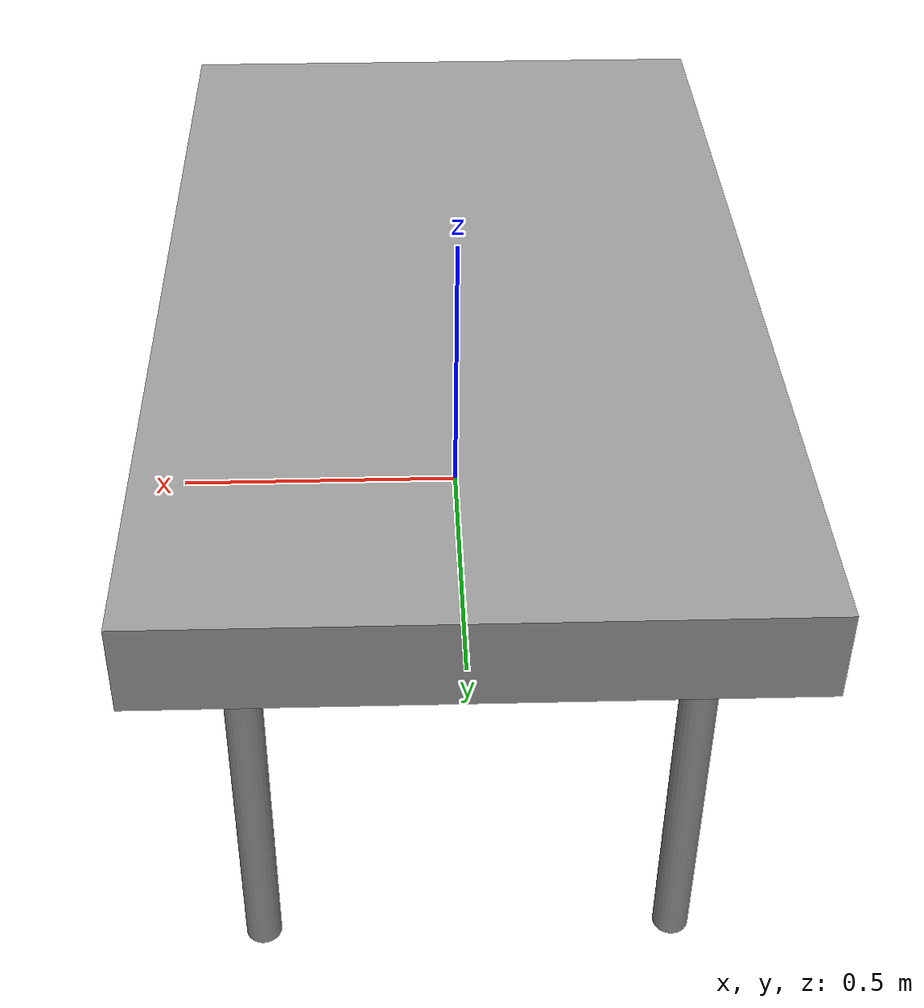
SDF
<?xml version='1.0'?>
<sdf version='1.6'>
  <model name='Living_lab_table'>
    <link name='link_1'>
      <pose frame=''>-0.35 0.65 -0.09 0 -0 0</pose>
      <inertial>
        <mass>1</mass>
        <inertia>
          <ixx>0.145833</ixx>
          <ixy>0</ixy>
          <ixz>0</ixz>
          <iyy>0.145833</iyy>
          <iyz>0</iyz>
          <izz>0.125</izz>
        </inertia>
        <pose frame=''>0 0 0 0 -0 0</pose>
      </inertial>
      <gravity>1</gravity>
      <self_collide>0</self_collide>
      <kinematic>0</kinematic>
      <visual name='visual'>
        <pose frame=''>0 0 0 0 -0 0</pose>
        <geometry>
          <cylinder>
            <radius>0.03</radius>
            <length>0.75</length>
          </cylinder>
        </geometry>
        <material>
          <lighting>1</lighting>
          <script>
            <uri>file://media/materials/scripts/gazebo.material</uri>
            <name>Gazebo/Grey</name>
          </script>
          <ambient>0.3 0.3 0.3 1</ambient>
          <diffuse>0.7 0.7 0.7 1</diffuse>
          <specular>0.01 0.01 0.01 1</specular>
          <emissive>0 0 0 1</emissive>
          <shader type='vertex'>
            <normal_map>__default__</normal_map>
          </shader>
        </material>
        <cast_shadows>1</cast_shadows>
        <transparency>0</transparency>
      </visual>
      <collision name='collision'>
        <laser_retro>0</laser_retro>
        <max_contacts>10</max_contacts>
        <pose frame=''>0 0 0 0 -0 0</pose>
        <geometry>
          <cylinder>
            <radius>0.03</radius>
            <length>0.75</length>
          </cylinder>
        </geometry>
        <surface>
          <friction>
            <ode>
              <mu>1</mu>
              <mu2>1</mu2>
              <fdir1>0 0 0</fdir1>
              <slip1>0</slip1>
              <slip2>0</slip2>
            </ode>
            <torsional>
              <coefficient>1</coefficient>
              <patch_radius>0</patch_radius>
              <surface_radius>0</surface_radius>
              <use_patch_radius>1</use_patch_radius>
              <ode>
                <slip>0</slip>
              </ode>
            </torsional>
          </friction>
          <bounce>
            <restitution_coefficient>0</restitution_coefficient>
            <threshold>1e+06</threshold>
          </bounce>
          <contact>
            <collide_without_contact>0</collide_without_contact>
            <collide_without_contact_bitmask>1</collide_without_contact_bitmask>
            <collide_bitmask>1</collide_bitmask>
            <ode>
              <soft_cfm>0</soft_cfm>
              <soft_erp>0.2</soft_erp>
              <kp>1e+13</kp>
              <kd>1</kd>
              <max_vel>0.01</max_vel>
              <min_depth>0</min_depth>
            </ode>
            <bullet>
              <split_impulse>1</split_impulse>
              <split_impulse_penetration_threshold>-0.01</split_impulse_penetration_threshold>
              <soft_cfm>0</soft_cfm>
              <soft_erp>0.2</soft_erp>
              <kp>1e+13</kp>
              <kd>1</kd>
            </bullet>
          </contact>
        </surface>
      </collision>
    </link>
    <link name='link_1_clone'>
      <pose frame=''>0.35 0.65 -0.09 0 -0 0</pose>
      <inertial>
        <mass>1</mass>
        <inertia>
          <ixx>0.145833</ixx>
          <ixy>0</ixy>
          <ixz>0</ixz>
          <iyy>0.145833</iyy>
          <iyz>0</iyz>
          <izz>0.125</izz>
        </inertia>
        <pose frame=''>0 0 0 0 -0 0</pose>
      </inertial>
      <self_collide>0</self_collide>
      <kinematic>0</kinematic>
      <gravity>1</gravity>
      <visual name='visual'>
        <pose frame=''>0 0 0 0 -0 0</pose>
        <geometry>
          <cylinder>
            <radius>0.03</radius>
            <length>0.75</length>
          </cylinder>
        </geometry>
        <material>
          <lighting>1</lighting>
          <script>
            <uri>file://media/materials/scripts/gazebo.material</uri>
            <name>Gazebo/Grey</name>
          </script>
          <ambient>0.3 0.3 0.3 1</ambient>
          <diffuse>0.7 0.7 0.7 1</diffuse>
          <specular>0.01 0.01 0.01 1</specular>
          <emissive>0 0 0 1</emissive>
          <shader type='vertex'>
            <normal_map>__default__</normal_map>
          </shader>
        </material>
        <cast_shadows>1</cast_shadows>
        <transparency>0</transparency>
      </visual>
      <collision name='collision'>
        <laser_retro>0</laser_retro>
        <max_contacts>10</max_contacts>
        <pose frame=''>0 0 0 0 -0 0</pose>
        <geometry>
          <cylinder>
            <radius>0.03</radius>
            <length>0.75</length>
          </cylinder>
        </geometry>
        <surface>
          <friction>
            <ode>
              <mu>1</mu>
              <mu2>1</mu2>
              <fdir1>0 0 0</fdir1>
              <slip1>0</slip1>
              <slip2>0</slip2>
            </ode>
            <torsional>
              <coefficient>1</coefficient>
              <patch_radius>0</patch_radius>
              <surface_radius>0</surface_radius>
              <use_patch_radius>1</use_patch_radius>
              <ode>
                <slip>0</slip>
              </ode>
            </torsional>
          </friction>
          <bounce>
            <restitution_coefficient>0</restitution_coefficient>
            <threshold>1e+06</threshold>
          </bounce>
          <contact>
            <collide_without_contact>0</collide_without_contact>
            <collide_without_contact_bitmask>1</collide_without_contact_bitmask>
            <collide_bitmask>1</collide_bitmask>
            <ode>
              <soft_cfm>0</soft_cfm>
              <soft_erp>0.2</soft_erp>
              <kp>1e+13</kp>
              <kd>1</kd>
              <max_vel>0.01</max_vel>
              <min_depth>0</min_depth>
            </ode>
            <bullet>
              <split_impulse>1</split_impulse>
              <split_impulse_penetration_threshold>-0.01</split_impulse_penetration_threshold>
              <soft_cfm>0</soft_cfm>
              <soft_erp>0.2</soft_erp>
              <kp>1e+13</kp>
              <kd>1</kd>
            </bullet>
          </contact>
        </surface>
      </collision>
    </link>
    <link name='link_1_clone_0'>
      <pose frame=''>0.35 -0.65 -0.09 0 -0 0</pose>
      <inertial>
        <mass>1</mass>
        <inertia>
          <ixx>0.145833</ixx>
          <ixy>0</ixy>
          <ixz>0</ixz>
          <iyy>0.145833</iyy>
          <iyz>0</iyz>
          <izz>0.125</izz>
        </inertia>
        <pose frame=''>0 0 0 0 -0 0</pose>
      </inertial>
      <self_collide>0</self_collide>
      <kinematic>0</kinematic>
      <gravity>1</gravity>
      <visual name='visual'>
        <pose frame=''>0 0 0 0 -0 0</pose>
        <geometry>
          <cylinder>
            <radius>0.03</radius>
            <length>0.75</length>
          </cylinder>
        </geometry>
        <material>
          <lighting>1</lighting>
          <script>
            <uri>file://media/materials/scripts/gazebo.material</uri>
            <name>Gazebo/Grey</name>
          </script>
          <ambient>0.3 0.3 0.3 1</ambient>
          <diffuse>0.7 0.7 0.7 1</diffuse>
          <specular>0.01 0.01 0.01 1</specular>
          <emissive>0 0 0 1</emissive>
          <shader type='vertex'>
            <normal_map>__default__</normal_map>
          </shader>
        </material>
        <cast_shadows>1</cast_shadows>
        <transparency>0</transparency>
      </visual>
      <collision name='collision'>
        <laser_retro>0</laser_retro>
        <max_contacts>10</max_contacts>
        <pose frame=''>0 0 0 0 -0 0</pose>
        <geometry>
          <cylinder>
            <radius>0.03</radius>
            <length>0.75</length>
          </cylinder>
        </geometry>
        <surface>
          <friction>
            <ode>
              <mu>1</mu>
              <mu2>1</mu2>
              <fdir1>0 0 0</fdir1>
              <slip1>0</slip1>
              <slip2>0</slip2>
            </ode>
            <torsional>
              <coefficient>1</coefficient>
              <patch_radius>0</patch_radius>
              <surface_radius>0</surface_radius>
              <use_patch_radius>1</use_patch_radius>
              <ode>
                <slip>0</slip>
              </ode>
            </torsional>
          </friction>
          <bounce>
            <restitution_coefficient>0</restitution_coefficient>
            <threshold>1e+06</threshold>
          </bounce>
          <contact>
            <collide_without_contact>0</collide_without_contact>
            <collide_without_contact_bitmask>1</collide_without_contact_bitmask>
            <collide_bitmask>1</collide_bitmask>
            <ode>
              <soft_cfm>0</soft_cfm>
              <soft_erp>0.2</soft_erp>
              <kp>1e+13</kp>
              <kd>1</kd>
              <max_vel>0.01</max_vel>
              <min_depth>0</min_depth>
            </ode>
            <bullet>
              <split_impulse>1</split_impulse>
              <split_impulse_penetration_threshold>-0.01</split_impulse_penetration_threshold>
              <soft_cfm>0</soft_cfm>
              <soft_erp>0.2</soft_erp>
              <kp>1e+13</kp>
              <kd>1</kd>
            </bullet>
          </contact>
        </surface>
      </collision>
    </link>
    <link name='link_1_clone_1'>
      <pose frame=''>-0.35 -0.65 -0.09 0 -0 0</pose>
      <inertial>
        <mass>1</mass>
        <inertia>
          <ixx>0.145833</ixx>
          <ixy>0</ixy>
          <ixz>0</ixz>
          <iyy>0.145833</iyy>
          <iyz>0</iyz>
          <izz>0.125</izz>
        </inertia>
        <pose frame=''>0 0 0 0 -0 0</pose>
      </inertial>
      <self_collide>0</self_collide>
      <kinematic>0</kinematic>
      <gravity>1</gravity>
      <visual name='visual'>
        <pose frame=''>0 0 0 0 -0 0</pose>
        <geometry>
          <cylinder>
            <radius>0.03</radius>
            <length>0.75</length>
          </cylinder>
        </geometry>
        <material>
          <lighting>1</lighting>
          <script>
            <uri>file://media/materials/scripts/gazebo.material</uri>
            <name>Gazebo/Grey</name>
          </script>
          <ambient>0.3 0.3 0.3 1</ambient>
          <diffuse>0.7 0.7 0.7 1</diffuse>
          <specular>0.01 0.01 0.01 1</specular>
          <emissive>0 0 0 1</emissive>
          <shader type='vertex'>
            <normal_map>__default__</normal_map>
          </shader>
        </material>
        <cast_shadows>1</cast_shadows>
        <transparency>0</transparency>
      </visual>
      <collision name='collision'>
        <laser_retro>0</laser_retro>
        <max_contacts>10</max_contacts>
        <pose frame=''>0 0 0 0 -0 0</pose>
        <geometry>
          <cylinder>
            <radius>0.03</radius>
            <length>0.75</length>
          </cylinder>
        </geometry>
        <surface>
          <friction>
            <ode>
              <mu>1</mu>
              <mu2>1</mu2>
              <fdir1>0 0 0</fdir1>
              <slip1>0</slip1>
              <slip2>0</slip2>
            </ode>
            <torsional>
              <coefficient>1</coefficient>
              <patch_radius>0</patch_radius>
              <surface_radius>0</surface_radius>
              <use_patch_radius>1</use_patch_radius>
              <ode>
                <slip>0</slip>
              </ode>
            </torsional>
          </friction>
          <bounce>
            <restitution_coefficient>0</restitution_coefficient>
            <threshold>1e+06</threshold>
          </bounce>
          <contact>
            <collide_without_contact>0</collide_without_contact>
            <collide_without_contact_bitmask>1</collide_without_contact_bitmask>
            <collide_bitmask>1</collide_bitmask>
            <ode>
              <soft_cfm>0</soft_cfm>
              <soft_erp>0.2</soft_erp>
              <kp>1e+13</kp>
              <kd>1</kd>
              <max_vel>0.01</max_vel>
              <min_depth>0</min_depth>
            </ode>
            <bullet>
              <split_impulse>1</split_impulse>
              <split_impulse_penetration_threshold>-0.01</split_impulse_penetration_threshold>
              <soft_cfm>0</soft_cfm>
              <soft_erp>0.2</soft_erp>
              <kp>1e+13</kp>
              <kd>1</kd>
            </bullet>
          </contact>
        </surface>
      </collision>
    </link>
    <link name='link_2'>
      <pose frame=''>-0 -0 0.36 0 -0 0</pose>
      <inertial>
        <mass>1</mass>
        <inertia>
          <ixx>0.166667</ixx>
          <ixy>0</ixy>
          <ixz>0</ixz>
          <iyy>0.166667</iyy>
          <iyz>0</iyz>
          <izz>0.166667</izz>
        </inertia>
        <pose frame=''>0 0 0 0 -0 0</pose>
      </inertial>
      <gravity>1</gravity>
      <self_collide>0</self_collide>
      <kinematic>0</kinematic>
      <visual name='visual'>
        <pose frame=''>0 0 0 0 -0 0</pose>
        <geometry>
          <box>
            <size>1 1.7 0.15</size>
          </box>
        </geometry>
        <material>
          <lighting>1</lighting>
          <script>
            <uri>file://media/materials/scripts/gazebo.material</uri>
            <name>Gazebo/Grey</name>
          </script>
          <ambient>0.3 0.3 0.3 1</ambient>
          <diffuse>0.7 0.7 0.7 1</diffuse>
          <specular>0.01 0.01 0.01 1</specular>
          <emissive>0 0 0 1</emissive>
          <shader type='vertex'>
            <normal_map>__default__</normal_map>
          </shader>
        </material>
        <cast_shadows>1</cast_shadows>
        <transparency>0</transparency>
      </visual>
      <collision name='collision'>
        <laser_retro>0</laser_retro>
        <max_contacts>10</max_contacts>
        <pose frame=''>0 0 0 0 -0 0</pose>
        <geometry>
          <box>
            <size>1 1.7 0.15</size>
          </box>
        </geometry>
        <surface>
          <friction>
            <ode>
              <mu>1</mu>
              <mu2>1</mu2>
              <fdir1>0 0 0</fdir1>
              <slip1>0</slip1>
              <slip2>0</slip2>
            </ode>
            <torsional>
              <coefficient>1</coefficient>
              <patch_radius>0</patch_radius>
              <surface_radius>0</surface_radius>
              <use_patch_radius>1</use_patch_radius>
              <ode>
                <slip>0</slip>
              </ode>
            </torsional>
          </friction>
          <bounce>
            <restitution_coefficient>0</restitution_coefficient>
            <threshold>1e+06</threshold>
          </bounce>
          <contact>
            <collide_without_contact>0</collide_without_contact>
            <collide_without_contact_bitmask>1</collide_without_contact_bitmask>
            <collide_bitmask>1</collide_bitmask>
            <ode>
              <soft_cfm>0</soft_cfm>
              <soft_erp>0.2</soft_erp>
              <kp>1e+13</kp>
              <kd>1</kd>
              <max_vel>0.01</max_vel>
              <min_depth>0</min_depth>
            </ode>
            <bullet>
              <split_impulse>1</split_impulse>
              <split_impulse_penetration_threshold>-0.01</split_impulse_penetration_threshold>
              <soft_cfm>0</soft_cfm>
              <soft_erp>0.2</soft_erp>
              <kp>1e+13</kp>
              <kd>1</kd>
            </bullet>
          </contact>
        </surface>
      </collision>
    </link>
    <static>1</static>
    <allow_auto_disable>1</allow_auto_disable>
  </model>
</sdf>
